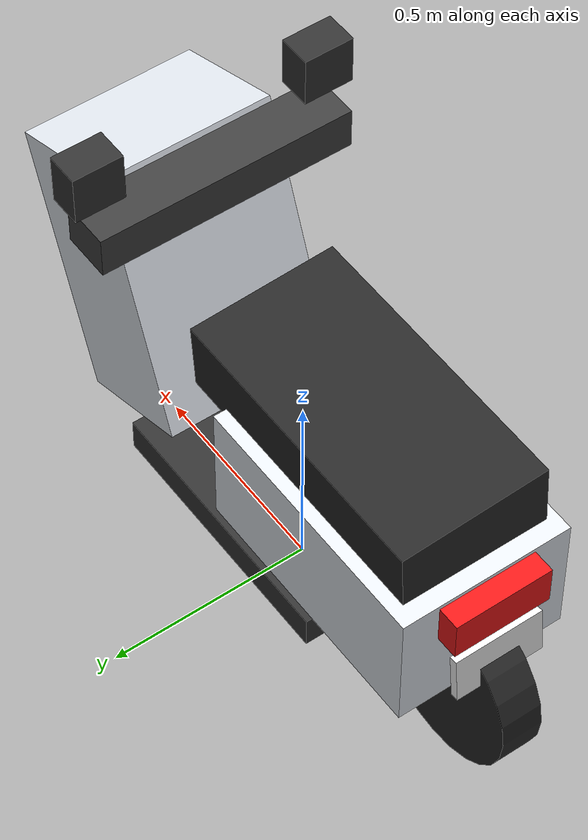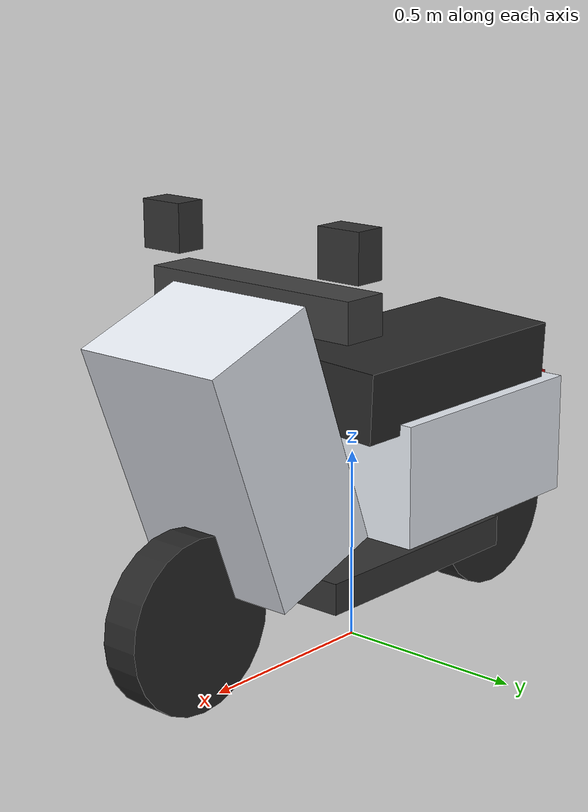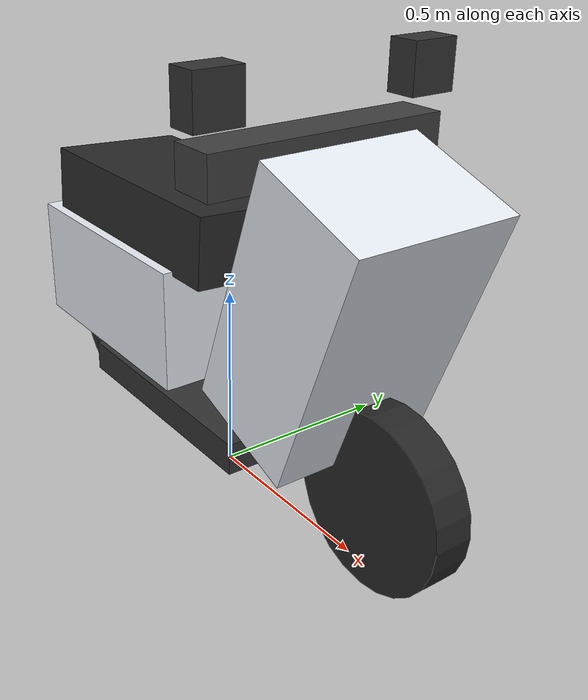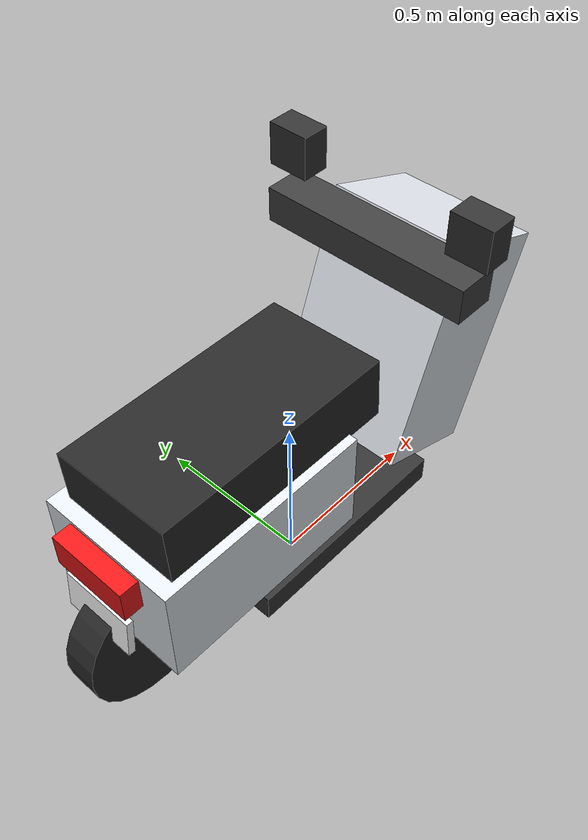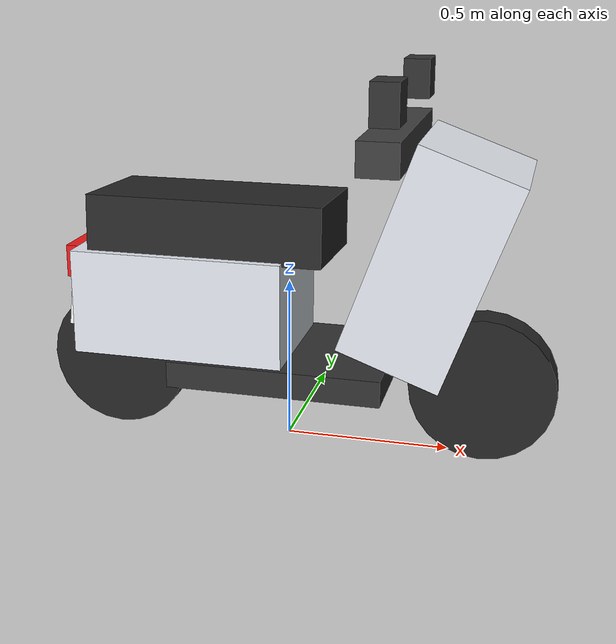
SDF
<?xml version="1.0" ?>
<sdf version="1.8">
  <model name="parked_scooter">
    <static>true</static>
    <link name="scooter_link">
      <!-- 簡化外接碰撞方塊 (Oriented Bounding Box) -->
      <collision name="scooter_col">
        <pose>0 0 0.55 0 0 0</pose>
        <geometry>
          <box><size>1.7 0.65 1.1</size></box>
        </geometry>
      </collision>

      <!-- 前後車輪 (10吋黑色橡膠車胎) -->
      <visual name="front_wheel">
        <pose>0.6 0 0.22 1.5707963 0 0</pose>
        <geometry>
          <cylinder><radius>0.22</radius><length>0.10</length></cylinder>
        </geometry>
        <material>
          <ambient>0.1 0.1 0.1 1</ambient>
          <diffuse>0.15 0.15 0.15 1</diffuse>
        </material>
      </visual>
      <visual name="rear_wheel">
        <pose>-0.55 0 0.22 1.5707963 0 0</pose>
        <geometry>
          <cylinder><radius>0.22</radius><length>0.10</length></cylinder>
        </geometry>
        <material>
          <ambient>0.1 0.1 0.1 1</ambient>
          <diffuse>0.15 0.15 0.15 1</diffuse>
        </material>
      </visual>

      <!-- 踏板底盤與腳踏區 (Floorboard) -->
      <visual name="floorboard">
        <pose>0 0 0.25 0 0 0</pose>
        <geometry>
          <box><size>0.65 0.45 0.08</size></box>
        </geometry>
        <material>
          <ambient>0.15 0.15 0.15 1</ambient>
          <diffuse>0.2 0.2 0.2 1</diffuse>
        </material>
      </visual>

      <!-- 前斜板面罩 (Front Shield & Fairing - 經典白/深藍色) -->
      <visual name="front_cowl">
        <pose>0.45 0 0.62 0 0.35 0</pose>
        <geometry>
          <box><size>0.32 0.42 0.65</size></box>
        </geometry>
        <material>
          <ambient>0.85 0.88 0.90 1</ambient>
          <diffuse>0.90 0.92 0.95 1</diffuse>
        </material>
      </visual>

      <!-- 前大燈 (Headlamp Lens) -->
      <visual name="headlight">
        <pose>0.62 0 0.76 0 0.35 0</pose>
        <geometry>
          <box><size>0.08 0.24 0.14</size></box>
        </geometry>
        <material>
          <ambient>0.9 0.95 1.0 1</ambient>
          <diffuse>0.95 0.98 1.0 1</diffuse>
          <emissive>0.4 0.45 0.5 1</emissive>
        </material>
      </visual>

      <!-- 龍頭握把與儀表蓋 (Handlebar) -->
      <visual name="handlebar">
        <pose>0.32 0 0.95 0 0 0</pose>
        <geometry>
          <box><size>0.12 0.62 0.10</size></box>
        </geometry>
        <material>
          <ambient>0.2 0.2 0.2 1</ambient>
          <diffuse>0.25 0.25 0.25 1</diffuse>
        </material>
      </visual>

      <!-- 左右後照鏡 (Rearview Mirrors) -->
      <visual name="mirror_l">
        <pose>0.34 0.28 1.10 0 0 0</pose>
        <geometry>
          <box><size>0.08 0.12 0.12</size></box>
        </geometry>
        <material>
          <ambient>0.15 0.15 0.15 1</ambient>
          <diffuse>0.2 0.2 0.2 1</diffuse>
        </material>
      </visual>
      <visual name="mirror_r">
        <pose>0.34 -0.28 1.10 0 0 0</pose>
        <geometry>
          <box><size>0.08 0.12 0.12</size></box>
        </geometry>
        <material>
          <ambient>0.15 0.15 0.15 1</ambient>
          <diffuse>0.2 0.2 0.2 1</diffuse>
        </material>
      </visual>

      <!-- 後座機車座墊 (Seat Cushion - 黑色皮革) -->
      <visual name="seat">
        <pose>-0.22 0 0.68 -0.05 0 0</pose>
        <geometry>
          <box><size>0.72 0.36 0.18</size></box>
        </geometry>
        <material>
          <ambient>0.12 0.12 0.12 1</ambient>
          <diffuse>0.16 0.16 0.16 1</diffuse>
        </material>
      </visual>

      <!-- 後車體側蓋 (Body Rear Side Cover) -->
      <visual name="rear_body">
        <pose>-0.3 0 0.45 0 0 0</pose>
        <geometry>
          <box><size>0.65 0.42 0.32</size></box>
        </geometry>
        <material>
          <ambient>0.85 0.88 0.90 1</ambient>
          <diffuse>0.90 0.92 0.95 1</diffuse>
        </material>
      </visual>

      <!-- 車尾燈與白底車牌 (Tail Light & Taiwan Plate) -->
      <visual name="taillight">
        <pose>-0.65 0 0.55 0 0 0</pose>
        <geometry>
          <box><size>0.06 0.24 0.10</size></box>
        </geometry>
        <material>
          <ambient>0.85 0.05 0.05 1</ambient>
          <diffuse>0.95 0.1 0.1 1</diffuse>
          <emissive>0.5 0.05 0.05 1</emissive>
        </material>
      </visual>
      <visual name="license_plate">
        <pose>-0.67 0 0.40 0 0.1 0</pose>
        <geometry>
          <box><size>0.02 0.22 0.12</size></box>
        </geometry>
        <material>
          <ambient>0.95 0.95 0.95 1</ambient>
          <diffuse>1 1 1 1</diffuse>
        </material>
      </visual>
    </link>
  </model>
</sdf>
